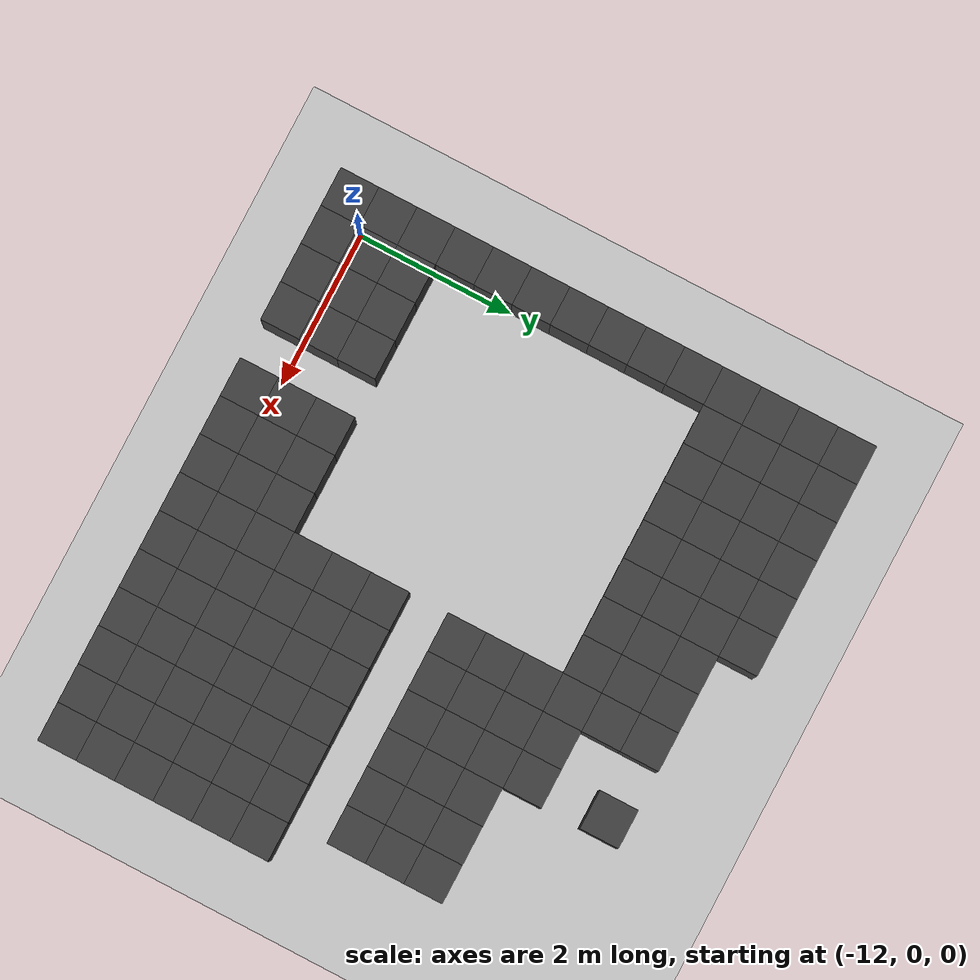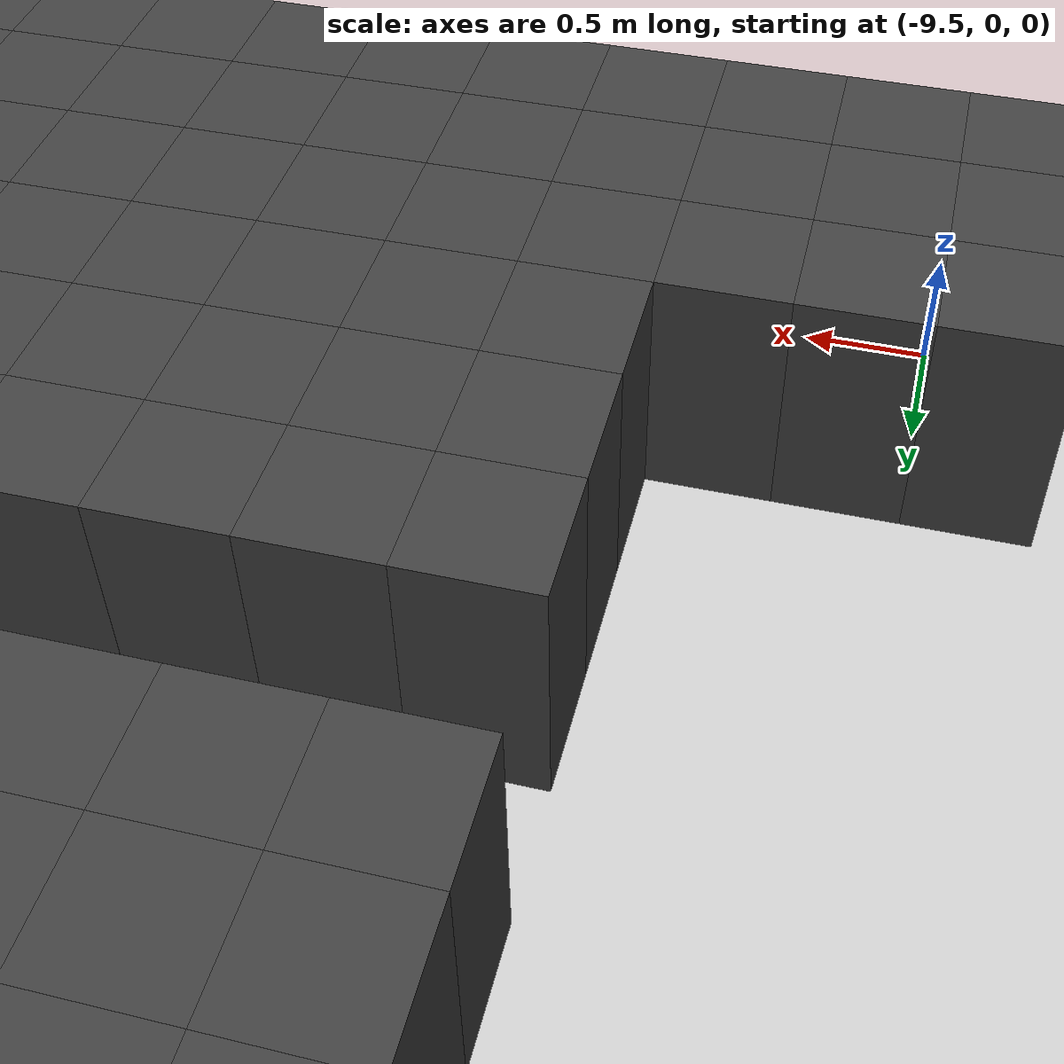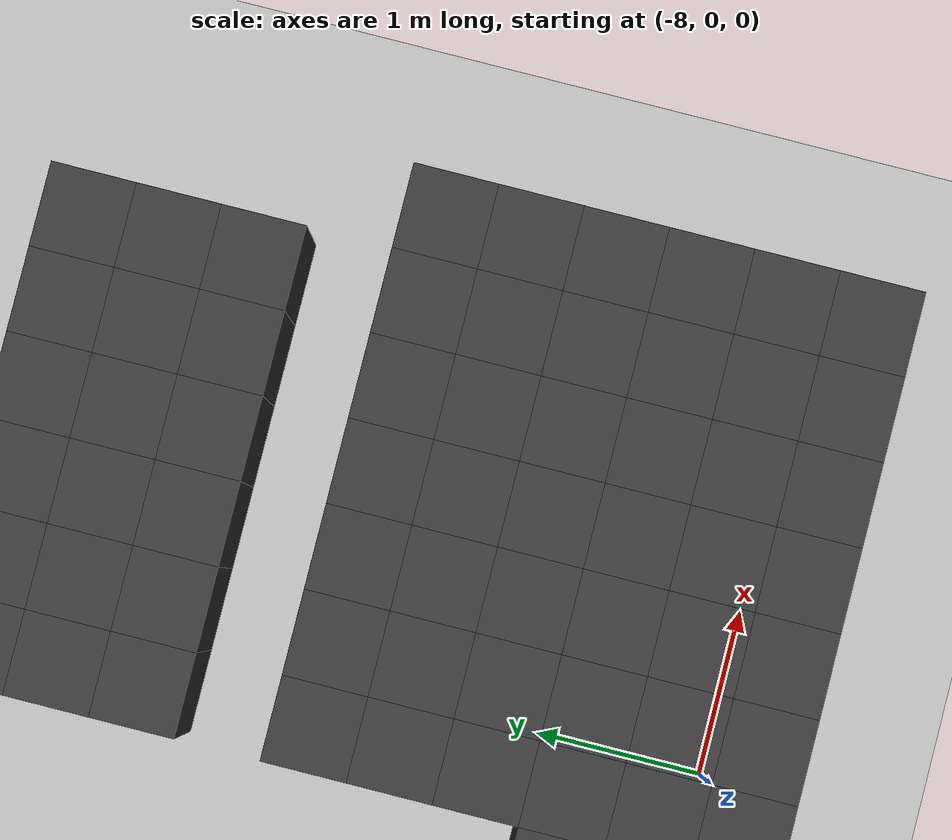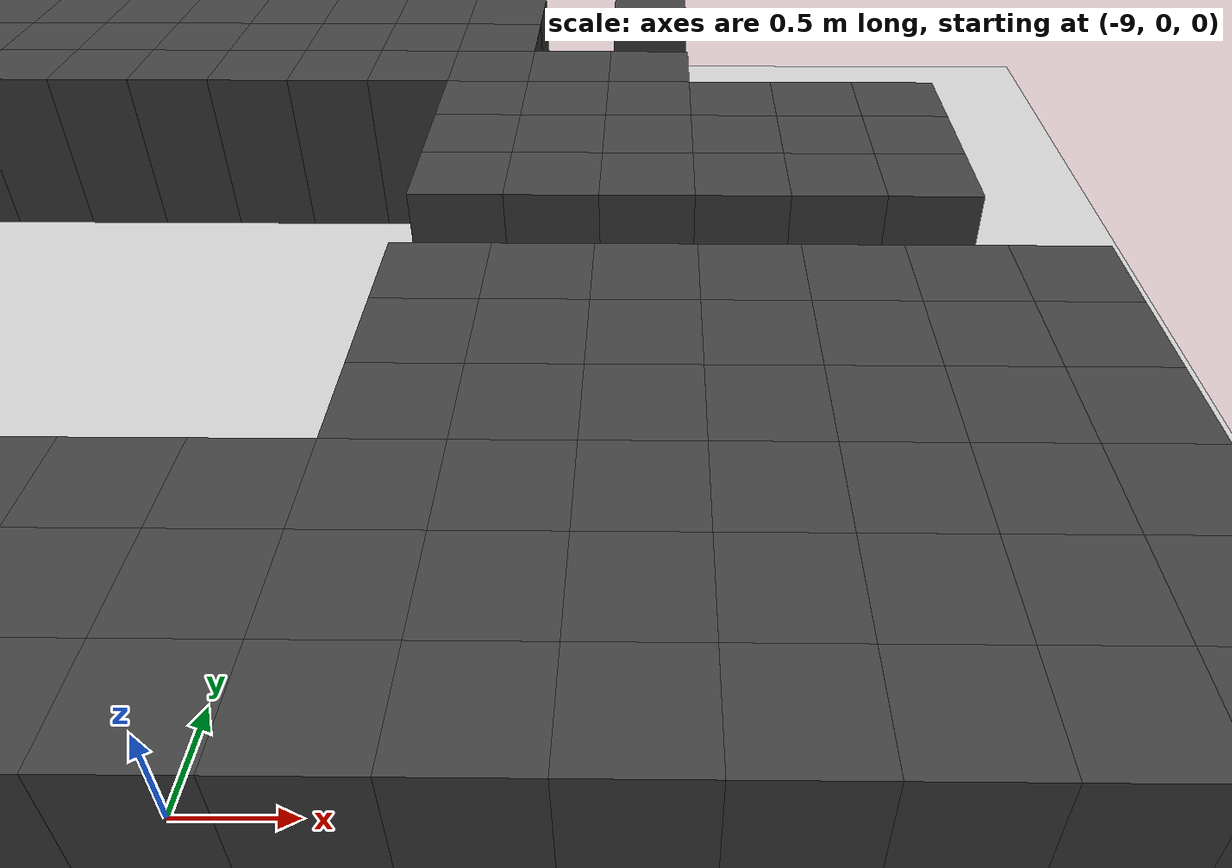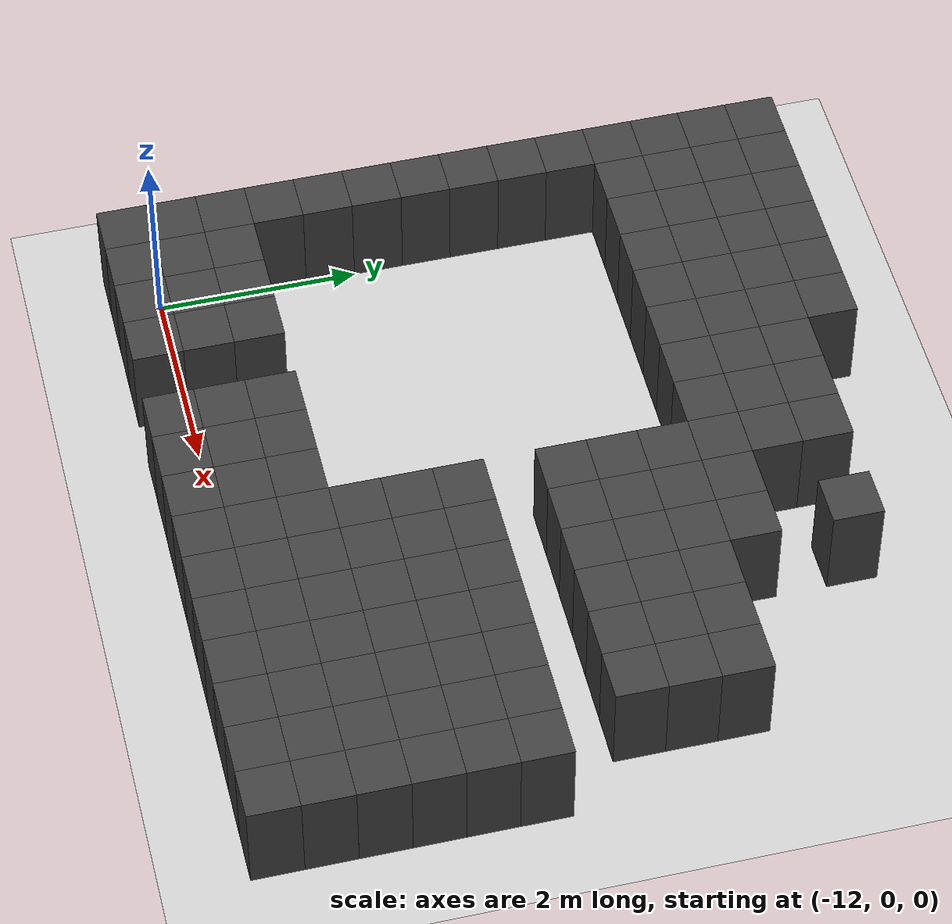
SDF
<sdf version="1.7">
 <world name="map_14668">
  <model name="ground_plane">
   <static>true</static>
   <link name="link">
    <collision name="collision">
     <geometry><plane><normal>0 0 1</normal><size>200 200</size></plane></geometry>
    </collision>
    <visual name="visual">
     <geometry><plane><normal>0 0 1</normal><size>200 200</size></plane></geometry>
     <material><ambient>0.8 0.8 0.8 1</ambient><diffuse>0.8 0.8 0.8 1</diffuse></material>
    </visual>
   </link>
  </model>
  <model name="maze_environment">
   <static>true</static>
   <link name="wall_446">
    <pose>-12.250 6.250 0.500 0 0 0</pose>
    <collision name="col"><geometry><box><size>0.5 0.5 1.0</size></box></geometry></collision>
    <visual name="vis">
     <geometry><box><size>0.5 0.5 1.0</size></box></geometry>
     <material><ambient>0.15 0.15 0.15 1</ambient><diffuse>0.25 0.25 0.25 1</diffuse></material>
    </visual>
   </link>
   <link name="wall_447">
    <pose>-11.750 6.250 0.500 0 0 0</pose>
    <collision name="col"><geometry><box><size>0.5 0.5 1.0</size></box></geometry></collision>
    <visual name="vis">
     <geometry><box><size>0.5 0.5 1.0</size></box></geometry>
     <material><ambient>0.15 0.15 0.15 1</ambient><diffuse>0.25 0.25 0.25 1</diffuse></material>
    </visual>
   </link>
   <link name="wall_448">
    <pose>-11.250 6.250 0.500 0 0 0</pose>
    <collision name="col"><geometry><box><size>0.5 0.5 1.0</size></box></geometry></collision>
    <visual name="vis">
     <geometry><box><size>0.5 0.5 1.0</size></box></geometry>
     <material><ambient>0.15 0.15 0.15 1</ambient><diffuse>0.25 0.25 0.25 1</diffuse></material>
    </visual>
   </link>
   <link name="wall_449">
    <pose>-10.750 6.250 0.500 0 0 0</pose>
    <collision name="col"><geometry><box><size>0.5 0.5 1.0</size></box></geometry></collision>
    <visual name="vis">
     <geometry><box><size>0.5 0.5 1.0</size></box></geometry>
     <material><ambient>0.15 0.15 0.15 1</ambient><diffuse>0.25 0.25 0.25 1</diffuse></material>
    </visual>
   </link>
   <link name="wall_450">
    <pose>-10.250 6.250 0.500 0 0 0</pose>
    <collision name="col"><geometry><box><size>0.5 0.5 1.0</size></box></geometry></collision>
    <visual name="vis">
     <geometry><box><size>0.5 0.5 1.0</size></box></geometry>
     <material><ambient>0.15 0.15 0.15 1</ambient><diffuse>0.25 0.25 0.25 1</diffuse></material>
    </visual>
   </link>
   <link name="wall_451">
    <pose>-9.750 6.250 0.500 0 0 0</pose>
    <collision name="col"><geometry><box><size>0.5 0.5 1.0</size></box></geometry></collision>
    <visual name="vis">
     <geometry><box><size>0.5 0.5 1.0</size></box></geometry>
     <material><ambient>0.15 0.15 0.15 1</ambient><diffuse>0.25 0.25 0.25 1</diffuse></material>
    </visual>
   </link>
   <link name="wall_473">
    <pose>-12.250 5.750 0.500 0 0 0</pose>
    <collision name="col"><geometry><box><size>0.5 0.5 1.0</size></box></geometry></collision>
    <visual name="vis">
     <geometry><box><size>0.5 0.5 1.0</size></box></geometry>
     <material><ambient>0.15 0.15 0.15 1</ambient><diffuse>0.25 0.25 0.25 1</diffuse></material>
    </visual>
   </link>
   <link name="wall_474">
    <pose>-11.750 5.750 0.500 0 0 0</pose>
    <collision name="col"><geometry><box><size>0.5 0.5 1.0</size></box></geometry></collision>
    <visual name="vis">
     <geometry><box><size>0.5 0.5 1.0</size></box></geometry>
     <material><ambient>0.15 0.15 0.15 1</ambient><diffuse>0.25 0.25 0.25 1</diffuse></material>
    </visual>
   </link>
   <link name="wall_475">
    <pose>-11.250 5.750 0.500 0 0 0</pose>
    <collision name="col"><geometry><box><size>0.5 0.5 1.0</size></box></geometry></collision>
    <visual name="vis">
     <geometry><box><size>0.5 0.5 1.0</size></box></geometry>
     <material><ambient>0.15 0.15 0.15 1</ambient><diffuse>0.25 0.25 0.25 1</diffuse></material>
    </visual>
   </link>
   <link name="wall_476">
    <pose>-10.750 5.750 0.500 0 0 0</pose>
    <collision name="col"><geometry><box><size>0.5 0.5 1.0</size></box></geometry></collision>
    <visual name="vis">
     <geometry><box><size>0.5 0.5 1.0</size></box></geometry>
     <material><ambient>0.15 0.15 0.15 1</ambient><diffuse>0.25 0.25 0.25 1</diffuse></material>
    </visual>
   </link>
   <link name="wall_477">
    <pose>-10.250 5.750 0.500 0 0 0</pose>
    <collision name="col"><geometry><box><size>0.5 0.5 1.0</size></box></geometry></collision>
    <visual name="vis">
     <geometry><box><size>0.5 0.5 1.0</size></box></geometry>
     <material><ambient>0.15 0.15 0.15 1</ambient><diffuse>0.25 0.25 0.25 1</diffuse></material>
    </visual>
   </link>
   <link name="wall_478">
    <pose>-9.750 5.750 0.500 0 0 0</pose>
    <collision name="col"><geometry><box><size>0.5 0.5 1.0</size></box></geometry></collision>
    <visual name="vis">
     <geometry><box><size>0.5 0.5 1.0</size></box></geometry>
     <material><ambient>0.15 0.15 0.15 1</ambient><diffuse>0.25 0.25 0.25 1</diffuse></material>
    </visual>
   </link>
   <link name="wall_479">
    <pose>-9.250 5.750 0.500 0 0 0</pose>
    <collision name="col"><geometry><box><size>0.5 0.5 1.0</size></box></geometry></collision>
    <visual name="vis">
     <geometry><box><size>0.5 0.5 1.0</size></box></geometry>
     <material><ambient>0.15 0.15 0.15 1</ambient><diffuse>0.25 0.25 0.25 1</diffuse></material>
    </visual>
   </link>
   <link name="wall_480">
    <pose>-8.750 5.750 0.500 0 0 0</pose>
    <collision name="col"><geometry><box><size>0.5 0.5 1.0</size></box></geometry></collision>
    <visual name="vis">
     <geometry><box><size>0.5 0.5 1.0</size></box></geometry>
     <material><ambient>0.15 0.15 0.15 1</ambient><diffuse>0.25 0.25 0.25 1</diffuse></material>
    </visual>
   </link>
   <link name="wall_481">
    <pose>-8.250 5.750 0.500 0 0 0</pose>
    <collision name="col"><geometry><box><size>0.5 0.5 1.0</size></box></geometry></collision>
    <visual name="vis">
     <geometry><box><size>0.5 0.5 1.0</size></box></geometry>
     <material><ambient>0.15 0.15 0.15 1</ambient><diffuse>0.25 0.25 0.25 1</diffuse></material>
    </visual>
   </link>
   <link name="wall_482">
    <pose>-7.250 5.750 0.500 0 0 0</pose>
    <collision name="col"><geometry><box><size>0.5 0.5 1.0</size></box></geometry></collision>
    <visual name="vis">
     <geometry><box><size>0.5 0.5 1.0</size></box></geometry>
     <material><ambient>0.15 0.15 0.15 1</ambient><diffuse>0.25 0.25 0.25 1</diffuse></material>
    </visual>
   </link>
   <link name="wall_504">
    <pose>-12.250 5.250 0.500 0 0 0</pose>
    <collision name="col"><geometry><box><size>0.5 0.5 1.0</size></box></geometry></collision>
    <visual name="vis">
     <geometry><box><size>0.5 0.5 1.0</size></box></geometry>
     <material><ambient>0.15 0.15 0.15 1</ambient><diffuse>0.25 0.25 0.25 1</diffuse></material>
    </visual>
   </link>
   <link name="wall_505">
    <pose>-11.750 5.250 0.500 0 0 0</pose>
    <collision name="col"><geometry><box><size>0.5 0.5 1.0</size></box></geometry></collision>
    <visual name="vis">
     <geometry><box><size>0.5 0.5 1.0</size></box></geometry>
     <material><ambient>0.15 0.15 0.15 1</ambient><diffuse>0.25 0.25 0.25 1</diffuse></material>
    </visual>
   </link>
   <link name="wall_506">
    <pose>-11.250 5.250 0.500 0 0 0</pose>
    <collision name="col"><geometry><box><size>0.5 0.5 1.0</size></box></geometry></collision>
    <visual name="vis">
     <geometry><box><size>0.5 0.5 1.0</size></box></geometry>
     <material><ambient>0.15 0.15 0.15 1</ambient><diffuse>0.25 0.25 0.25 1</diffuse></material>
    </visual>
   </link>
   <link name="wall_507">
    <pose>-10.750 5.250 0.500 0 0 0</pose>
    <collision name="col"><geometry><box><size>0.5 0.5 1.0</size></box></geometry></collision>
    <visual name="vis">
     <geometry><box><size>0.5 0.5 1.0</size></box></geometry>
     <material><ambient>0.15 0.15 0.15 1</ambient><diffuse>0.25 0.25 0.25 1</diffuse></material>
    </visual>
   </link>
   <link name="wall_508">
    <pose>-10.250 5.250 0.500 0 0 0</pose>
    <collision name="col"><geometry><box><size>0.5 0.5 1.0</size></box></geometry></collision>
    <visual name="vis">
     <geometry><box><size>0.5 0.5 1.0</size></box></geometry>
     <material><ambient>0.15 0.15 0.15 1</ambient><diffuse>0.25 0.25 0.25 1</diffuse></material>
    </visual>
   </link>
   <link name="wall_509">
    <pose>-9.750 5.250 0.500 0 0 0</pose>
    <collision name="col"><geometry><box><size>0.5 0.5 1.0</size></box></geometry></collision>
    <visual name="vis">
     <geometry><box><size>0.5 0.5 1.0</size></box></geometry>
     <material><ambient>0.15 0.15 0.15 1</ambient><diffuse>0.25 0.25 0.25 1</diffuse></material>
    </visual>
   </link>
   <link name="wall_510">
    <pose>-9.250 5.250 0.500 0 0 0</pose>
    <collision name="col"><geometry><box><size>0.5 0.5 1.0</size></box></geometry></collision>
    <visual name="vis">
     <geometry><box><size>0.5 0.5 1.0</size></box></geometry>
     <material><ambient>0.15 0.15 0.15 1</ambient><diffuse>0.25 0.25 0.25 1</diffuse></material>
    </visual>
   </link>
   <link name="wall_511">
    <pose>-8.750 5.250 0.500 0 0 0</pose>
    <collision name="col"><geometry><box><size>0.5 0.5 1.0</size></box></geometry></collision>
    <visual name="vis">
     <geometry><box><size>0.5 0.5 1.0</size></box></geometry>
     <material><ambient>0.15 0.15 0.15 1</ambient><diffuse>0.25 0.25 0.25 1</diffuse></material>
    </visual>
   </link>
   <link name="wall_512">
    <pose>-8.250 5.250 0.500 0 0 0</pose>
    <collision name="col"><geometry><box><size>0.5 0.5 1.0</size></box></geometry></collision>
    <visual name="vis">
     <geometry><box><size>0.5 0.5 1.0</size></box></geometry>
     <material><ambient>0.15 0.15 0.15 1</ambient><diffuse>0.25 0.25 0.25 1</diffuse></material>
    </visual>
   </link>
   <link name="wall_534">
    <pose>-12.250 4.750 0.500 0 0 0</pose>
    <collision name="col"><geometry><box><size>0.5 0.5 1.0</size></box></geometry></collision>
    <visual name="vis">
     <geometry><box><size>0.5 0.5 1.0</size></box></geometry>
     <material><ambient>0.15 0.15 0.15 1</ambient><diffuse>0.25 0.25 0.25 1</diffuse></material>
    </visual>
   </link>
   <link name="wall_535">
    <pose>-11.750 4.750 0.500 0 0 0</pose>
    <collision name="col"><geometry><box><size>0.5 0.5 1.0</size></box></geometry></collision>
    <visual name="vis">
     <geometry><box><size>0.5 0.5 1.0</size></box></geometry>
     <material><ambient>0.15 0.15 0.15 1</ambient><diffuse>0.25 0.25 0.25 1</diffuse></material>
    </visual>
   </link>
   <link name="wall_536">
    <pose>-11.250 4.750 0.500 0 0 0</pose>
    <collision name="col"><geometry><box><size>0.5 0.5 1.0</size></box></geometry></collision>
    <visual name="vis">
     <geometry><box><size>0.5 0.5 1.0</size></box></geometry>
     <material><ambient>0.15 0.15 0.15 1</ambient><diffuse>0.25 0.25 0.25 1</diffuse></material>
    </visual>
   </link>
   <link name="wall_537">
    <pose>-10.750 4.750 0.500 0 0 0</pose>
    <collision name="col"><geometry><box><size>0.5 0.5 1.0</size></box></geometry></collision>
    <visual name="vis">
     <geometry><box><size>0.5 0.5 1.0</size></box></geometry>
     <material><ambient>0.15 0.15 0.15 1</ambient><diffuse>0.25 0.25 0.25 1</diffuse></material>
    </visual>
   </link>
   <link name="wall_538">
    <pose>-10.250 4.750 0.500 0 0 0</pose>
    <collision name="col"><geometry><box><size>0.5 0.5 1.0</size></box></geometry></collision>
    <visual name="vis">
     <geometry><box><size>0.5 0.5 1.0</size></box></geometry>
     <material><ambient>0.15 0.15 0.15 1</ambient><diffuse>0.25 0.25 0.25 1</diffuse></material>
    </visual>
   </link>
   <link name="wall_539">
    <pose>-9.750 4.750 0.500 0 0 0</pose>
    <collision name="col"><geometry><box><size>0.5 0.5 1.0</size></box></geometry></collision>
    <visual name="vis">
     <geometry><box><size>0.5 0.5 1.0</size></box></geometry>
     <material><ambient>0.15 0.15 0.15 1</ambient><diffuse>0.25 0.25 0.25 1</diffuse></material>
    </visual>
   </link>
   <link name="wall_540">
    <pose>-9.250 4.750 0.500 0 0 0</pose>
    <collision name="col"><geometry><box><size>0.5 0.5 1.0</size></box></geometry></collision>
    <visual name="vis">
     <geometry><box><size>0.5 0.5 1.0</size></box></geometry>
     <material><ambient>0.15 0.15 0.15 1</ambient><diffuse>0.25 0.25 0.25 1</diffuse></material>
    </visual>
   </link>
   <link name="wall_541">
    <pose>-8.750 4.750 0.500 0 0 0</pose>
    <collision name="col"><geometry><box><size>0.5 0.5 1.0</size></box></geometry></collision>
    <visual name="vis">
     <geometry><box><size>0.5 0.5 1.0</size></box></geometry>
     <material><ambient>0.15 0.15 0.15 1</ambient><diffuse>0.25 0.25 0.25 1</diffuse></material>
    </visual>
   </link>
   <link name="wall_542">
    <pose>-8.250 4.750 0.500 0 0 0</pose>
    <collision name="col"><geometry><box><size>0.5 0.5 1.0</size></box></geometry></collision>
    <visual name="vis">
     <geometry><box><size>0.5 0.5 1.0</size></box></geometry>
     <material><ambient>0.15 0.15 0.15 1</ambient><diffuse>0.25 0.25 0.25 1</diffuse></material>
    </visual>
   </link>
   <link name="wall_543">
    <pose>-7.750 4.750 0.500 0 0 0</pose>
    <collision name="col"><geometry><box><size>0.5 0.5 1.0</size></box></geometry></collision>
    <visual name="vis">
     <geometry><box><size>0.5 0.5 1.0</size></box></geometry>
     <material><ambient>0.15 0.15 0.15 1</ambient><diffuse>0.25 0.25 0.25 1</diffuse></material>
    </visual>
   </link>
   <link name="wall_544">
    <pose>-7.250 4.750 0.500 0 0 0</pose>
    <collision name="col"><geometry><box><size>0.5 0.5 1.0</size></box></geometry></collision>
    <visual name="vis">
     <geometry><box><size>0.5 0.5 1.0</size></box></geometry>
     <material><ambient>0.15 0.15 0.15 1</ambient><diffuse>0.25 0.25 0.25 1</diffuse></material>
    </visual>
   </link>
   <link name="wall_570">
    <pose>-12.250 4.250 0.500 0 0 0</pose>
    <collision name="col"><geometry><box><size>0.5 0.5 1.0</size></box></geometry></collision>
    <visual name="vis">
     <geometry><box><size>0.5 0.5 1.0</size></box></geometry>
     <material><ambient>0.15 0.15 0.15 1</ambient><diffuse>0.25 0.25 0.25 1</diffuse></material>
    </visual>
   </link>
   <link name="wall_571">
    <pose>-8.250 4.250 0.500 0 0 0</pose>
    <collision name="col"><geometry><box><size>0.5 0.5 1.0</size></box></geometry></collision>
    <visual name="vis">
     <geometry><box><size>0.5 0.5 1.0</size></box></geometry>
     <material><ambient>0.15 0.15 0.15 1</ambient><diffuse>0.25 0.25 0.25 1</diffuse></material>
    </visual>
   </link>
   <link name="wall_572">
    <pose>-7.750 4.250 0.500 0 0 0</pose>
    <collision name="col"><geometry><box><size>0.5 0.5 1.0</size></box></geometry></collision>
    <visual name="vis">
     <geometry><box><size>0.5 0.5 1.0</size></box></geometry>
     <material><ambient>0.15 0.15 0.15 1</ambient><diffuse>0.25 0.25 0.25 1</diffuse></material>
    </visual>
   </link>
   <link name="wall_573">
    <pose>-7.250 4.250 0.500 0 0 0</pose>
    <collision name="col"><geometry><box><size>0.5 0.5 1.0</size></box></geometry></collision>
    <visual name="vis">
     <geometry><box><size>0.5 0.5 1.0</size></box></geometry>
     <material><ambient>0.15 0.15 0.15 1</ambient><diffuse>0.25 0.25 0.25 1</diffuse></material>
    </visual>
   </link>
   <link name="wall_574">
    <pose>-6.750 4.250 0.500 0 0 0</pose>
    <collision name="col"><geometry><box><size>0.5 0.5 1.0</size></box></geometry></collision>
    <visual name="vis">
     <geometry><box><size>0.5 0.5 1.0</size></box></geometry>
     <material><ambient>0.15 0.15 0.15 1</ambient><diffuse>0.25 0.25 0.25 1</diffuse></material>
    </visual>
   </link>
   <link name="wall_575">
    <pose>-6.250 4.250 0.500 0 0 0</pose>
    <collision name="col"><geometry><box><size>0.5 0.5 1.0</size></box></geometry></collision>
    <visual name="vis">
     <geometry><box><size>0.5 0.5 1.0</size></box></geometry>
     <material><ambient>0.15 0.15 0.15 1</ambient><diffuse>0.25 0.25 0.25 1</diffuse></material>
    </visual>
   </link>
   <link name="wall_576">
    <pose>-5.750 4.250 0.500 0 0 0</pose>
    <collision name="col"><geometry><box><size>0.5 0.5 1.0</size></box></geometry></collision>
    <visual name="vis">
     <geometry><box><size>0.5 0.5 1.0</size></box></geometry>
     <material><ambient>0.15 0.15 0.15 1</ambient><diffuse>0.25 0.25 0.25 1</diffuse></material>
    </visual>
   </link>
   <link name="wall_604">
    <pose>-12.250 3.750 0.500 0 0 0</pose>
    <collision name="col"><geometry><box><size>0.5 0.5 1.0</size></box></geometry></collision>
    <visual name="vis">
     <geometry><box><size>0.5 0.5 1.0</size></box></geometry>
     <material><ambient>0.15 0.15 0.15 1</ambient><diffuse>0.25 0.25 0.25 1</diffuse></material>
    </visual>
   </link>
   <link name="wall_605">
    <pose>-8.250 3.750 0.500 0 0 0</pose>
    <collision name="col"><geometry><box><size>0.5 0.5 1.0</size></box></geometry></collision>
    <visual name="vis">
     <geometry><box><size>0.5 0.5 1.0</size></box></geometry>
     <material><ambient>0.15 0.15 0.15 1</ambient><diffuse>0.25 0.25 0.25 1</diffuse></material>
    </visual>
   </link>
   <link name="wall_606">
    <pose>-7.750 3.750 0.500 0 0 0</pose>
    <collision name="col"><geometry><box><size>0.5 0.5 1.0</size></box></geometry></collision>
    <visual name="vis">
     <geometry><box><size>0.5 0.5 1.0</size></box></geometry>
     <material><ambient>0.15 0.15 0.15 1</ambient><diffuse>0.25 0.25 0.25 1</diffuse></material>
    </visual>
   </link>
   <link name="wall_607">
    <pose>-7.250 3.750 0.500 0 0 0</pose>
    <collision name="col"><geometry><box><size>0.5 0.5 1.0</size></box></geometry></collision>
    <visual name="vis">
     <geometry><box><size>0.5 0.5 1.0</size></box></geometry>
     <material><ambient>0.15 0.15 0.15 1</ambient><diffuse>0.25 0.25 0.25 1</diffuse></material>
    </visual>
   </link>
   <link name="wall_608">
    <pose>-6.750 3.750 0.500 0 0 0</pose>
    <collision name="col"><geometry><box><size>0.5 0.5 1.0</size></box></geometry></collision>
    <visual name="vis">
     <geometry><box><size>0.5 0.5 1.0</size></box></geometry>
     <material><ambient>0.15 0.15 0.15 1</ambient><diffuse>0.25 0.25 0.25 1</diffuse></material>
    </visual>
   </link>
   <link name="wall_609">
    <pose>-6.250 3.750 0.500 0 0 0</pose>
    <collision name="col"><geometry><box><size>0.5 0.5 1.0</size></box></geometry></collision>
    <visual name="vis">
     <geometry><box><size>0.5 0.5 1.0</size></box></geometry>
     <material><ambient>0.15 0.15 0.15 1</ambient><diffuse>0.25 0.25 0.25 1</diffuse></material>
    </visual>
   </link>
   <link name="wall_610">
    <pose>-5.750 3.750 0.500 0 0 0</pose>
    <collision name="col"><geometry><box><size>0.5 0.5 1.0</size></box></geometry></collision>
    <visual name="vis">
     <geometry><box><size>0.5 0.5 1.0</size></box></geometry>
     <material><ambient>0.15 0.15 0.15 1</ambient><diffuse>0.25 0.25 0.25 1</diffuse></material>
    </visual>
   </link>
   <link name="wall_646">
    <pose>-12.250 3.250 0.500 0 0 0</pose>
    <collision name="col"><geometry><box><size>0.5 0.5 1.0</size></box></geometry></collision>
    <visual name="vis">
     <geometry><box><size>0.5 0.5 1.0</size></box></geometry>
     <material><ambient>0.15 0.15 0.15 1</ambient><diffuse>0.25 0.25 0.25 1</diffuse></material>
    </visual>
   </link>
   <link name="wall_647">
    <pose>-8.250 3.250 0.500 0 0 0</pose>
    <collision name="col"><geometry><box><size>0.5 0.5 1.0</size></box></geometry></collision>
    <visual name="vis">
     <geometry><box><size>0.5 0.5 1.0</size></box></geometry>
     <material><ambient>0.15 0.15 0.15 1</ambient><diffuse>0.25 0.25 0.25 1</diffuse></material>
    </visual>
   </link>
   <link name="wall_648">
    <pose>-7.750 3.250 0.500 0 0 0</pose>
    <collision name="col"><geometry><box><size>0.5 0.5 1.0</size></box></geometry></collision>
    <visual name="vis">
     <geometry><box><size>0.5 0.5 1.0</size></box></geometry>
     <material><ambient>0.15 0.15 0.15 1</ambient><diffuse>0.25 0.25 0.25 1</diffuse></material>
    </visual>
   </link>
   <link name="wall_649">
    <pose>-7.250 3.250 0.500 0 0 0</pose>
    <collision name="col"><geometry><box><size>0.5 0.5 1.0</size></box></geometry></collision>
    <visual name="vis">
     <geometry><box><size>0.5 0.5 1.0</size></box></geometry>
     <material><ambient>0.15 0.15 0.15 1</ambient><diffuse>0.25 0.25 0.25 1</diffuse></material>
    </visual>
   </link>
   <link name="wall_650">
    <pose>-6.750 3.250 0.500 0 0 0</pose>
    <collision name="col"><geometry><box><size>0.5 0.5 1.0</size></box></geometry></collision>
    <visual name="vis">
     <geometry><box><size>0.5 0.5 1.0</size></box></geometry>
     <material><ambient>0.15 0.15 0.15 1</ambient><diffuse>0.25 0.25 0.25 1</diffuse></material>
    </visual>
   </link>
   <link name="wall_651">
    <pose>-6.250 3.250 0.500 0 0 0</pose>
    <collision name="col"><geometry><box><size>0.5 0.5 1.0</size></box></geometry></collision>
    <visual name="vis">
     <geometry><box><size>0.5 0.5 1.0</size></box></geometry>
     <material><ambient>0.15 0.15 0.15 1</ambient><diffuse>0.25 0.25 0.25 1</diffuse></material>
    </visual>
   </link>
   <link name="wall_652">
    <pose>-5.750 3.250 0.500 0 0 0</pose>
    <collision name="col"><geometry><box><size>0.5 0.5 1.0</size></box></geometry></collision>
    <visual name="vis">
     <geometry><box><size>0.5 0.5 1.0</size></box></geometry>
     <material><ambient>0.15 0.15 0.15 1</ambient><diffuse>0.25 0.25 0.25 1</diffuse></material>
    </visual>
   </link>
   <link name="wall_688">
    <pose>-12.250 2.750 0.500 0 0 0</pose>
    <collision name="col"><geometry><box><size>0.5 0.5 1.0</size></box></geometry></collision>
    <visual name="vis">
     <geometry><box><size>0.5 0.5 1.0</size></box></geometry>
     <material><ambient>0.15 0.15 0.15 1</ambient><diffuse>0.25 0.25 0.25 1</diffuse></material>
    </visual>
   </link>
   <link name="wall_724">
    <pose>-12.250 2.250 0.500 0 0 0</pose>
    <collision name="col"><geometry><box><size>0.5 0.5 1.0</size></box></geometry></collision>
    <visual name="vis">
     <geometry><box><size>0.5 0.5 1.0</size></box></geometry>
     <material><ambient>0.15 0.15 0.15 1</ambient><diffuse>0.25 0.25 0.25 1</diffuse></material>
    </visual>
   </link>
   <link name="wall_725">
    <pose>-8.250 2.250 0.500 0 0 0</pose>
    <collision name="col"><geometry><box><size>0.5 0.5 1.0</size></box></geometry></collision>
    <visual name="vis">
     <geometry><box><size>0.5 0.5 1.0</size></box></geometry>
     <material><ambient>0.15 0.15 0.15 1</ambient><diffuse>0.25 0.25 0.25 1</diffuse></material>
    </visual>
   </link>
   <link name="wall_726">
    <pose>-7.750 2.250 0.500 0 0 0</pose>
    <collision name="col"><geometry><box><size>0.5 0.5 1.0</size></box></geometry></collision>
    <visual name="vis">
     <geometry><box><size>0.5 0.5 1.0</size></box></geometry>
     <material><ambient>0.15 0.15 0.15 1</ambient><diffuse>0.25 0.25 0.25 1</diffuse></material>
    </visual>
   </link>
   <link name="wall_727">
    <pose>-7.250 2.250 0.500 0 0 0</pose>
    <collision name="col"><geometry><box><size>0.5 0.5 1.0</size></box></geometry></collision>
    <visual name="vis">
     <geometry><box><size>0.5 0.5 1.0</size></box></geometry>
     <material><ambient>0.15 0.15 0.15 1</ambient><diffuse>0.25 0.25 0.25 1</diffuse></material>
    </visual>
   </link>
   <link name="wall_728">
    <pose>-6.750 2.250 0.500 0 0 0</pose>
    <collision name="col"><geometry><box><size>0.5 0.5 1.0</size></box></geometry></collision>
    <visual name="vis">
     <geometry><box><size>0.5 0.5 1.0</size></box></geometry>
     <material><ambient>0.15 0.15 0.15 1</ambient><diffuse>0.25 0.25 0.25 1</diffuse></material>
    </visual>
   </link>
   <link name="wall_729">
    <pose>-6.250 2.250 0.500 0 0 0</pose>
    <collision name="col"><geometry><box><size>0.5 0.5 1.0</size></box></geometry></collision>
    <visual name="vis">
     <geometry><box><size>0.5 0.5 1.0</size></box></geometry>
     <material><ambient>0.15 0.15 0.15 1</ambient><diffuse>0.25 0.25 0.25 1</diffuse></material>
    </visual>
   </link>
   <link name="wall_730">
    <pose>-5.750 2.250 0.500 0 0 0</pose>
    <collision name="col"><geometry><box><size>0.5 0.5 1.0</size></box></geometry></collision>
    <visual name="vis">
     <geometry><box><size>0.5 0.5 1.0</size></box></geometry>
     <material><ambient>0.15 0.15 0.15 1</ambient><diffuse>0.25 0.25 0.25 1</diffuse></material>
    </visual>
   </link>
   <link name="wall_731">
    <pose>-5.250 2.250 0.500 0 0 0</pose>
    <collision name="col"><geometry><box><size>0.5 0.5 1.0</size></box></geometry></collision>
    <visual name="vis">
     <geometry><box><size>0.5 0.5 1.0</size></box></geometry>
     <material><ambient>0.15 0.15 0.15 1</ambient><diffuse>0.25 0.25 0.25 1</diffuse></material>
    </visual>
   </link>
   <link name="wall_767">
    <pose>-12.250 1.750 0.500 0 0 0</pose>
    <collision name="col"><geometry><box><size>0.5 0.5 1.0</size></box></geometry></collision>
    <visual name="vis">
     <geometry><box><size>0.5 0.5 1.0</size></box></geometry>
     <material><ambient>0.15 0.15 0.15 1</ambient><diffuse>0.25 0.25 0.25 1</diffuse></material>
    </visual>
   </link>
   <link name="wall_768">
    <pose>-8.250 1.750 0.500 0 0 0</pose>
    <collision name="col"><geometry><box><size>0.5 0.5 1.0</size></box></geometry></collision>
    <visual name="vis">
     <geometry><box><size>0.5 0.5 1.0</size></box></geometry>
     <material><ambient>0.15 0.15 0.15 1</ambient><diffuse>0.25 0.25 0.25 1</diffuse></material>
    </visual>
   </link>
   <link name="wall_769">
    <pose>-7.750 1.750 0.500 0 0 0</pose>
    <collision name="col"><geometry><box><size>0.5 0.5 1.0</size></box></geometry></collision>
    <visual name="vis">
     <geometry><box><size>0.5 0.5 1.0</size></box></geometry>
     <material><ambient>0.15 0.15 0.15 1</ambient><diffuse>0.25 0.25 0.25 1</diffuse></material>
    </visual>
   </link>
   <link name="wall_770">
    <pose>-7.250 1.750 0.500 0 0 0</pose>
    <collision name="col"><geometry><box><size>0.5 0.5 1.0</size></box></geometry></collision>
    <visual name="vis">
     <geometry><box><size>0.5 0.5 1.0</size></box></geometry>
     <material><ambient>0.15 0.15 0.15 1</ambient><diffuse>0.25 0.25 0.25 1</diffuse></material>
    </visual>
   </link>
   <link name="wall_771">
    <pose>-6.750 1.750 0.500 0 0 0</pose>
    <collision name="col"><geometry><box><size>0.5 0.5 1.0</size></box></geometry></collision>
    <visual name="vis">
     <geometry><box><size>0.5 0.5 1.0</size></box></geometry>
     <material><ambient>0.15 0.15 0.15 1</ambient><diffuse>0.25 0.25 0.25 1</diffuse></material>
    </visual>
   </link>
   <link name="wall_772">
    <pose>-6.250 1.750 0.500 0 0 0</pose>
    <collision name="col"><geometry><box><size>0.5 0.5 1.0</size></box></geometry></collision>
    <visual name="vis">
     <geometry><box><size>0.5 0.5 1.0</size></box></geometry>
     <material><ambient>0.15 0.15 0.15 1</ambient><diffuse>0.25 0.25 0.25 1</diffuse></material>
    </visual>
   </link>
   <link name="wall_773">
    <pose>-5.750 1.750 0.500 0 0 0</pose>
    <collision name="col"><geometry><box><size>0.5 0.5 1.0</size></box></geometry></collision>
    <visual name="vis">
     <geometry><box><size>0.5 0.5 1.0</size></box></geometry>
     <material><ambient>0.15 0.15 0.15 1</ambient><diffuse>0.25 0.25 0.25 1</diffuse></material>
    </visual>
   </link>
   <link name="wall_774">
    <pose>-5.250 1.750 0.500 0 0 0</pose>
    <collision name="col"><geometry><box><size>0.5 0.5 1.0</size></box></geometry></collision>
    <visual name="vis">
     <geometry><box><size>0.5 0.5 1.0</size></box></geometry>
     <material><ambient>0.15 0.15 0.15 1</ambient><diffuse>0.25 0.25 0.25 1</diffuse></material>
    </visual>
   </link>
   <link name="wall_810">
    <pose>-12.250 1.250 0.500 0 0 0</pose>
    <collision name="col"><geometry><box><size>0.5 0.5 1.0</size></box></geometry></collision>
    <visual name="vis">
     <geometry><box><size>0.5 0.5 1.0</size></box></geometry>
     <material><ambient>0.15 0.15 0.15 1</ambient><diffuse>0.25 0.25 0.25 1</diffuse></material>
    </visual>
   </link>
   <link name="wall_811">
    <pose>-8.250 1.250 0.500 0 0 0</pose>
    <collision name="col"><geometry><box><size>0.5 0.5 1.0</size></box></geometry></collision>
    <visual name="vis">
     <geometry><box><size>0.5 0.5 1.0</size></box></geometry>
     <material><ambient>0.15 0.15 0.15 1</ambient><diffuse>0.25 0.25 0.25 1</diffuse></material>
    </visual>
   </link>
   <link name="wall_812">
    <pose>-7.750 1.250 0.500 0 0 0</pose>
    <collision name="col"><geometry><box><size>0.5 0.5 1.0</size></box></geometry></collision>
    <visual name="vis">
     <geometry><box><size>0.5 0.5 1.0</size></box></geometry>
     <material><ambient>0.15 0.15 0.15 1</ambient><diffuse>0.25 0.25 0.25 1</diffuse></material>
    </visual>
   </link>
   <link name="wall_813">
    <pose>-7.250 1.250 0.500 0 0 0</pose>
    <collision name="col"><geometry><box><size>0.5 0.5 1.0</size></box></geometry></collision>
    <visual name="vis">
     <geometry><box><size>0.5 0.5 1.0</size></box></geometry>
     <material><ambient>0.15 0.15 0.15 1</ambient><diffuse>0.25 0.25 0.25 1</diffuse></material>
    </visual>
   </link>
   <link name="wall_814">
    <pose>-6.750 1.250 0.500 0 0 0</pose>
    <collision name="col"><geometry><box><size>0.5 0.5 1.0</size></box></geometry></collision>
    <visual name="vis">
     <geometry><box><size>0.5 0.5 1.0</size></box></geometry>
     <material><ambient>0.15 0.15 0.15 1</ambient><diffuse>0.25 0.25 0.25 1</diffuse></material>
    </visual>
   </link>
   <link name="wall_815">
    <pose>-6.250 1.250 0.500 0 0 0</pose>
    <collision name="col"><geometry><box><size>0.5 0.5 1.0</size></box></geometry></collision>
    <visual name="vis">
     <geometry><box><size>0.5 0.5 1.0</size></box></geometry>
     <material><ambient>0.15 0.15 0.15 1</ambient><diffuse>0.25 0.25 0.25 1</diffuse></material>
    </visual>
   </link>
   <link name="wall_816">
    <pose>-5.750 1.250 0.500 0 0 0</pose>
    <collision name="col"><geometry><box><size>0.5 0.5 1.0</size></box></geometry></collision>
    <visual name="vis">
     <geometry><box><size>0.5 0.5 1.0</size></box></geometry>
     <material><ambient>0.15 0.15 0.15 1</ambient><diffuse>0.25 0.25 0.25 1</diffuse></material>
    </visual>
   </link>
   <link name="wall_817">
    <pose>-5.250 1.250 0.500 0 0 0</pose>
    <collision name="col"><geometry><box><size>0.5 0.5 1.0</size></box></geometry></collision>
    <visual name="vis">
     <geometry><box><size>0.5 0.5 1.0</size></box></geometry>
     <material><ambient>0.15 0.15 0.15 1</ambient><diffuse>0.25 0.25 0.25 1</diffuse></material>
    </visual>
   </link>
   <link name="wall_853">
    <pose>-12.250 0.750 0.500 0 0 0</pose>
    <collision name="col"><geometry><box><size>0.5 0.5 1.0</size></box></geometry></collision>
    <visual name="vis">
     <geometry><box><size>0.5 0.5 1.0</size></box></geometry>
     <material><ambient>0.15 0.15 0.15 1</ambient><diffuse>0.25 0.25 0.25 1</diffuse></material>
    </visual>
   </link>
   <link name="wall_854">
    <pose>-11.750 0.750 0.500 0 0 0</pose>
    <collision name="col"><geometry><box><size>0.5 0.5 1.0</size></box></geometry></collision>
    <visual name="vis">
     <geometry><box><size>0.5 0.5 1.0</size></box></geometry>
     <material><ambient>0.15 0.15 0.15 1</ambient><diffuse>0.25 0.25 0.25 1</diffuse></material>
    </visual>
   </link>
   <link name="wall_855">
    <pose>-11.250 0.750 0.500 0 0 0</pose>
    <collision name="col"><geometry><box><size>0.5 0.5 1.0</size></box></geometry></collision>
    <visual name="vis">
     <geometry><box><size>0.5 0.5 1.0</size></box></geometry>
     <material><ambient>0.15 0.15 0.15 1</ambient><diffuse>0.25 0.25 0.25 1</diffuse></material>
    </visual>
   </link>
   <link name="wall_856">
    <pose>-10.750 0.750 0.500 0 0 0</pose>
    <collision name="col"><geometry><box><size>0.5 0.5 1.0</size></box></geometry></collision>
    <visual name="vis">
     <geometry><box><size>0.5 0.5 1.0</size></box></geometry>
     <material><ambient>0.15 0.15 0.15 1</ambient><diffuse>0.25 0.25 0.25 1</diffuse></material>
    </visual>
   </link>
   <link name="wall_857">
    <pose>-9.750 0.750 0.500 0 0 0</pose>
    <collision name="col"><geometry><box><size>0.5 0.5 1.0</size></box></geometry></collision>
    <visual name="vis">
     <geometry><box><size>0.5 0.5 1.0</size></box></geometry>
     <material><ambient>0.15 0.15 0.15 1</ambient><diffuse>0.25 0.25 0.25 1</diffuse></material>
    </visual>
   </link>
   <link name="wall_858">
    <pose>-9.250 0.750 0.500 0 0 0</pose>
    <collision name="col"><geometry><box><size>0.5 0.5 1.0</size></box></geometry></collision>
    <visual name="vis">
     <geometry><box><size>0.5 0.5 1.0</size></box></geometry>
     <material><ambient>0.15 0.15 0.15 1</ambient><diffuse>0.25 0.25 0.25 1</diffuse></material>
    </visual>
   </link>
   <link name="wall_859">
    <pose>-8.750 0.750 0.500 0 0 0</pose>
    <collision name="col"><geometry><box><size>0.5 0.5 1.0</size></box></geometry></collision>
    <visual name="vis">
     <geometry><box><size>0.5 0.5 1.0</size></box></geometry>
     <material><ambient>0.15 0.15 0.15 1</ambient><diffuse>0.25 0.25 0.25 1</diffuse></material>
    </visual>
   </link>
   <link name="wall_860">
    <pose>-8.250 0.750 0.500 0 0 0</pose>
    <collision name="col"><geometry><box><size>0.5 0.5 1.0</size></box></geometry></collision>
    <visual name="vis">
     <geometry><box><size>0.5 0.5 1.0</size></box></geometry>
     <material><ambient>0.15 0.15 0.15 1</ambient><diffuse>0.25 0.25 0.25 1</diffuse></material>
    </visual>
   </link>
   <link name="wall_861">
    <pose>-7.750 0.750 0.500 0 0 0</pose>
    <collision name="col"><geometry><box><size>0.5 0.5 1.0</size></box></geometry></collision>
    <visual name="vis">
     <geometry><box><size>0.5 0.5 1.0</size></box></geometry>
     <material><ambient>0.15 0.15 0.15 1</ambient><diffuse>0.25 0.25 0.25 1</diffuse></material>
    </visual>
   </link>
   <link name="wall_862">
    <pose>-7.250 0.750 0.500 0 0 0</pose>
    <collision name="col"><geometry><box><size>0.5 0.5 1.0</size></box></geometry></collision>
    <visual name="vis">
     <geometry><box><size>0.5 0.5 1.0</size></box></geometry>
     <material><ambient>0.15 0.15 0.15 1</ambient><diffuse>0.25 0.25 0.25 1</diffuse></material>
    </visual>
   </link>
   <link name="wall_863">
    <pose>-6.750 0.750 0.500 0 0 0</pose>
    <collision name="col"><geometry><box><size>0.5 0.5 1.0</size></box></geometry></collision>
    <visual name="vis">
     <geometry><box><size>0.5 0.5 1.0</size></box></geometry>
     <material><ambient>0.15 0.15 0.15 1</ambient><diffuse>0.25 0.25 0.25 1</diffuse></material>
    </visual>
   </link>
   <link name="wall_864">
    <pose>-6.250 0.750 0.500 0 0 0</pose>
    <collision name="col"><geometry><box><size>0.5 0.5 1.0</size></box></geometry></collision>
    <visual name="vis">
     <geometry><box><size>0.5 0.5 1.0</size></box></geometry>
     <material><ambient>0.15 0.15 0.15 1</ambient><diffuse>0.25 0.25 0.25 1</diffuse></material>
    </visual>
   </link>
   <link name="wall_865">
    <pose>-5.750 0.750 0.500 0 0 0</pose>
    <collision name="col"><geometry><box><size>0.5 0.5 1.0</size></box></geometry></collision>
    <visual name="vis">
     <geometry><box><size>0.5 0.5 1.0</size></box></geometry>
     <material><ambient>0.15 0.15 0.15 1</ambient><diffuse>0.25 0.25 0.25 1</diffuse></material>
    </visual>
   </link>
   <link name="wall_866">
    <pose>-5.250 0.750 0.500 0 0 0</pose>
    <collision name="col"><geometry><box><size>0.5 0.5 1.0</size></box></geometry></collision>
    <visual name="vis">
     <geometry><box><size>0.5 0.5 1.0</size></box></geometry>
     <material><ambient>0.15 0.15 0.15 1</ambient><diffuse>0.25 0.25 0.25 1</diffuse></material>
    </visual>
   </link>
   <link name="wall_902">
    <pose>-12.250 0.250 0.500 0 0 0</pose>
    <collision name="col"><geometry><box><size>0.5 0.5 1.0</size></box></geometry></collision>
    <visual name="vis">
     <geometry><box><size>0.5 0.5 1.0</size></box></geometry>
     <material><ambient>0.15 0.15 0.15 1</ambient><diffuse>0.25 0.25 0.25 1</diffuse></material>
    </visual>
   </link>
   <link name="wall_903">
    <pose>-11.750 0.250 0.500 0 0 0</pose>
    <collision name="col"><geometry><box><size>0.5 0.5 1.0</size></box></geometry></collision>
    <visual name="vis">
     <geometry><box><size>0.5 0.5 1.0</size></box></geometry>
     <material><ambient>0.15 0.15 0.15 1</ambient><diffuse>0.25 0.25 0.25 1</diffuse></material>
    </visual>
   </link>
   <link name="wall_904">
    <pose>-11.250 0.250 0.500 0 0 0</pose>
    <collision name="col"><geometry><box><size>0.5 0.5 1.0</size></box></geometry></collision>
    <visual name="vis">
     <geometry><box><size>0.5 0.5 1.0</size></box></geometry>
     <material><ambient>0.15 0.15 0.15 1</ambient><diffuse>0.25 0.25 0.25 1</diffuse></material>
    </visual>
   </link>
   <link name="wall_905">
    <pose>-10.750 0.250 0.500 0 0 0</pose>
    <collision name="col"><geometry><box><size>0.5 0.5 1.0</size></box></geometry></collision>
    <visual name="vis">
     <geometry><box><size>0.5 0.5 1.0</size></box></geometry>
     <material><ambient>0.15 0.15 0.15 1</ambient><diffuse>0.25 0.25 0.25 1</diffuse></material>
    </visual>
   </link>
   <link name="wall_906">
    <pose>-9.750 0.250 0.500 0 0 0</pose>
    <collision name="col"><geometry><box><size>0.5 0.5 1.0</size></box></geometry></collision>
    <visual name="vis">
     <geometry><box><size>0.5 0.5 1.0</size></box></geometry>
     <material><ambient>0.15 0.15 0.15 1</ambient><diffuse>0.25 0.25 0.25 1</diffuse></material>
    </visual>
   </link>
   <link name="wall_907">
    <pose>-9.250 0.250 0.500 0 0 0</pose>
    <collision name="col"><geometry><box><size>0.5 0.5 1.0</size></box></geometry></collision>
    <visual name="vis">
     <geometry><box><size>0.5 0.5 1.0</size></box></geometry>
     <material><ambient>0.15 0.15 0.15 1</ambient><diffuse>0.25 0.25 0.25 1</diffuse></material>
    </visual>
   </link>
   <link name="wall_908">
    <pose>-8.750 0.250 0.500 0 0 0</pose>
    <collision name="col"><geometry><box><size>0.5 0.5 1.0</size></box></geometry></collision>
    <visual name="vis">
     <geometry><box><size>0.5 0.5 1.0</size></box></geometry>
     <material><ambient>0.15 0.15 0.15 1</ambient><diffuse>0.25 0.25 0.25 1</diffuse></material>
    </visual>
   </link>
   <link name="wall_909">
    <pose>-8.250 0.250 0.500 0 0 0</pose>
    <collision name="col"><geometry><box><size>0.5 0.5 1.0</size></box></geometry></collision>
    <visual name="vis">
     <geometry><box><size>0.5 0.5 1.0</size></box></geometry>
     <material><ambient>0.15 0.15 0.15 1</ambient><diffuse>0.25 0.25 0.25 1</diffuse></material>
    </visual>
   </link>
   <link name="wall_910">
    <pose>-7.750 0.250 0.500 0 0 0</pose>
    <collision name="col"><geometry><box><size>0.5 0.5 1.0</size></box></geometry></collision>
    <visual name="vis">
     <geometry><box><size>0.5 0.5 1.0</size></box></geometry>
     <material><ambient>0.15 0.15 0.15 1</ambient><diffuse>0.25 0.25 0.25 1</diffuse></material>
    </visual>
   </link>
   <link name="wall_911">
    <pose>-7.250 0.250 0.500 0 0 0</pose>
    <collision name="col"><geometry><box><size>0.5 0.5 1.0</size></box></geometry></collision>
    <visual name="vis">
     <geometry><box><size>0.5 0.5 1.0</size></box></geometry>
     <material><ambient>0.15 0.15 0.15 1</ambient><diffuse>0.25 0.25 0.25 1</diffuse></material>
    </visual>
   </link>
   <link name="wall_912">
    <pose>-6.750 0.250 0.500 0 0 0</pose>
    <collision name="col"><geometry><box><size>0.5 0.5 1.0</size></box></geometry></collision>
    <visual name="vis">
     <geometry><box><size>0.5 0.5 1.0</size></box></geometry>
     <material><ambient>0.15 0.15 0.15 1</ambient><diffuse>0.25 0.25 0.25 1</diffuse></material>
    </visual>
   </link>
   <link name="wall_913">
    <pose>-6.250 0.250 0.500 0 0 0</pose>
    <collision name="col"><geometry><box><size>0.5 0.5 1.0</size></box></geometry></collision>
    <visual name="vis">
     <geometry><box><size>0.5 0.5 1.0</size></box></geometry>
     <material><ambient>0.15 0.15 0.15 1</ambient><diffuse>0.25 0.25 0.25 1</diffuse></material>
    </visual>
   </link>
   <link name="wall_914">
    <pose>-5.750 0.250 0.500 0 0 0</pose>
    <collision name="col"><geometry><box><size>0.5 0.5 1.0</size></box></geometry></collision>
    <visual name="vis">
     <geometry><box><size>0.5 0.5 1.0</size></box></geometry>
     <material><ambient>0.15 0.15 0.15 1</ambient><diffuse>0.25 0.25 0.25 1</diffuse></material>
    </visual>
   </link>
   <link name="wall_915">
    <pose>-5.250 0.250 0.500 0 0 0</pose>
    <collision name="col"><geometry><box><size>0.5 0.5 1.0</size></box></geometry></collision>
    <visual name="vis">
     <geometry><box><size>0.5 0.5 1.0</size></box></geometry>
     <material><ambient>0.15 0.15 0.15 1</ambient><diffuse>0.25 0.25 0.25 1</diffuse></material>
    </visual>
   </link>
   <link name="wall_951">
    <pose>-12.250 -0.250 0.500 0 0 0</pose>
    <collision name="col"><geometry><box><size>0.5 0.5 1.0</size></box></geometry></collision>
    <visual name="vis">
     <geometry><box><size>0.5 0.5 1.0</size></box></geometry>
     <material><ambient>0.15 0.15 0.15 1</ambient><diffuse>0.25 0.25 0.25 1</diffuse></material>
    </visual>
   </link>
   <link name="wall_952">
    <pose>-11.750 -0.250 0.500 0 0 0</pose>
    <collision name="col"><geometry><box><size>0.5 0.5 1.0</size></box></geometry></collision>
    <visual name="vis">
     <geometry><box><size>0.5 0.5 1.0</size></box></geometry>
     <material><ambient>0.15 0.15 0.15 1</ambient><diffuse>0.25 0.25 0.25 1</diffuse></material>
    </visual>
   </link>
   <link name="wall_953">
    <pose>-11.250 -0.250 0.500 0 0 0</pose>
    <collision name="col"><geometry><box><size>0.5 0.5 1.0</size></box></geometry></collision>
    <visual name="vis">
     <geometry><box><size>0.5 0.5 1.0</size></box></geometry>
     <material><ambient>0.15 0.15 0.15 1</ambient><diffuse>0.25 0.25 0.25 1</diffuse></material>
    </visual>
   </link>
   <link name="wall_954">
    <pose>-10.750 -0.250 0.500 0 0 0</pose>
    <collision name="col"><geometry><box><size>0.5 0.5 1.0</size></box></geometry></collision>
    <visual name="vis">
     <geometry><box><size>0.5 0.5 1.0</size></box></geometry>
     <material><ambient>0.15 0.15 0.15 1</ambient><diffuse>0.25 0.25 0.25 1</diffuse></material>
    </visual>
   </link>
   <link name="wall_955">
    <pose>-9.750 -0.250 0.500 0 0 0</pose>
    <collision name="col"><geometry><box><size>0.5 0.5 1.0</size></box></geometry></collision>
    <visual name="vis">
     <geometry><box><size>0.5 0.5 1.0</size></box></geometry>
     <material><ambient>0.15 0.15 0.15 1</ambient><diffuse>0.25 0.25 0.25 1</diffuse></material>
    </visual>
   </link>
   <link name="wall_956">
    <pose>-9.250 -0.250 0.500 0 0 0</pose>
    <collision name="col"><geometry><box><size>0.5 0.5 1.0</size></box></geometry></collision>
    <visual name="vis">
     <geometry><box><size>0.5 0.5 1.0</size></box></geometry>
     <material><ambient>0.15 0.15 0.15 1</ambient><diffuse>0.25 0.25 0.25 1</diffuse></material>
    </visual>
   </link>
   <link name="wall_957">
    <pose>-8.750 -0.250 0.500 0 0 0</pose>
    <collision name="col"><geometry><box><size>0.5 0.5 1.0</size></box></geometry></collision>
    <visual name="vis">
     <geometry><box><size>0.5 0.5 1.0</size></box></geometry>
     <material><ambient>0.15 0.15 0.15 1</ambient><diffuse>0.25 0.25 0.25 1</diffuse></material>
    </visual>
   </link>
   <link name="wall_958">
    <pose>-8.250 -0.250 0.500 0 0 0</pose>
    <collision name="col"><geometry><box><size>0.5 0.5 1.0</size></box></geometry></collision>
    <visual name="vis">
     <geometry><box><size>0.5 0.5 1.0</size></box></geometry>
     <material><ambient>0.15 0.15 0.15 1</ambient><diffuse>0.25 0.25 0.25 1</diffuse></material>
    </visual>
   </link>
   <link name="wall_959">
    <pose>-7.750 -0.250 0.500 0 0 0</pose>
    <collision name="col"><geometry><box><size>0.5 0.5 1.0</size></box></geometry></collision>
    <visual name="vis">
     <geometry><box><size>0.5 0.5 1.0</size></box></geometry>
     <material><ambient>0.15 0.15 0.15 1</ambient><diffuse>0.25 0.25 0.25 1</diffuse></material>
    </visual>
   </link>
   <link name="wall_960">
    <pose>-7.250 -0.250 0.500 0 0 0</pose>
    <collision name="col"><geometry><box><size>0.5 0.5 1.0</size></box></geometry></collision>
    <visual name="vis">
     <geometry><box><size>0.5 0.5 1.0</size></box></geometry>
     <material><ambient>0.15 0.15 0.15 1</ambient><diffuse>0.25 0.25 0.25 1</diffuse></material>
    </visual>
   </link>
   <link name="wall_961">
    <pose>-6.750 -0.250 0.500 0 0 0</pose>
    <collision name="col"><geometry><box><size>0.5 0.5 1.0</size></box></geometry></collision>
    <visual name="vis">
     <geometry><box><size>0.5 0.5 1.0</size></box></geometry>
     <material><ambient>0.15 0.15 0.15 1</ambient><diffuse>0.25 0.25 0.25 1</diffuse></material>
    </visual>
   </link>
   <link name="wall_962">
    <pose>-6.250 -0.250 0.500 0 0 0</pose>
    <collision name="col"><geometry><box><size>0.5 0.5 1.0</size></box></geometry></collision>
    <visual name="vis">
     <geometry><box><size>0.5 0.5 1.0</size></box></geometry>
     <material><ambient>0.15 0.15 0.15 1</ambient><diffuse>0.25 0.25 0.25 1</diffuse></material>
    </visual>
   </link>
   <link name="wall_963">
    <pose>-5.750 -0.250 0.500 0 0 0</pose>
    <collision name="col"><geometry><box><size>0.5 0.5 1.0</size></box></geometry></collision>
    <visual name="vis">
     <geometry><box><size>0.5 0.5 1.0</size></box></geometry>
     <material><ambient>0.15 0.15 0.15 1</ambient><diffuse>0.25 0.25 0.25 1</diffuse></material>
    </visual>
   </link>
   <link name="wall_964">
    <pose>-5.250 -0.250 0.500 0 0 0</pose>
    <collision name="col"><geometry><box><size>0.5 0.5 1.0</size></box></geometry></collision>
    <visual name="vis">
     <geometry><box><size>0.5 0.5 1.0</size></box></geometry>
     <material><ambient>0.15 0.15 0.15 1</ambient><diffuse>0.25 0.25 0.25 1</diffuse></material>
    </visual>
   </link>
  </model>
 </world>
</sdf>
